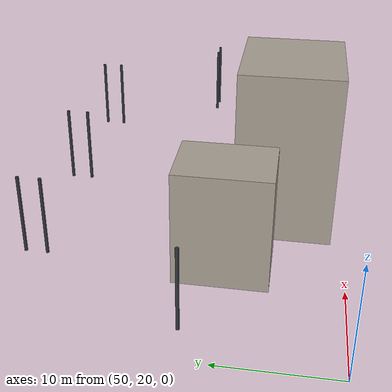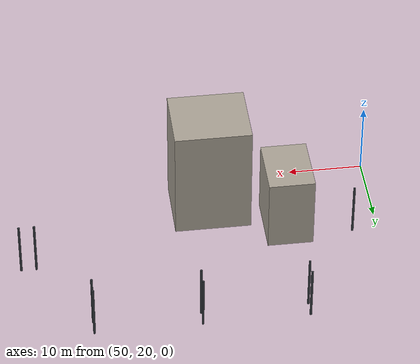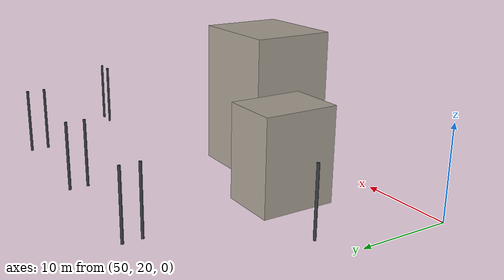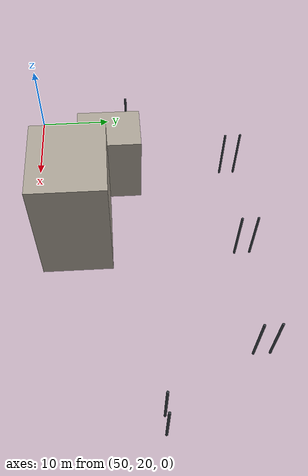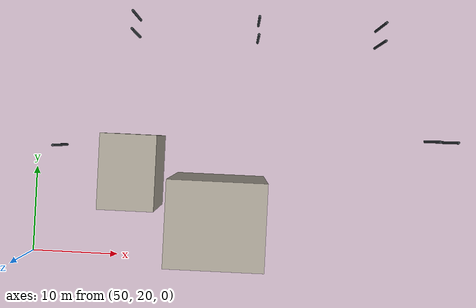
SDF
<sdf version="1.5">
 <world name="robocup_training_city_full_s7">
  <model name="building_2324">
   <static>true</static>
   <pose>71.866077 25.630236 0 0 0 0</pose>
   <link name="link">
    <pose>0 0 7.895653 0 0 0</pose>
    <collision name="collision">
     <geometry><box><size>10.213127 8.963937 15.791307</size></box></geometry>
     <surface><friction><ode><mu>1</mu><mu2>1</mu2></ode></friction></surface>
    </collision>
    <visual name="visual">
     <geometry><box><size>10.213127 8.963937 15.791307</size></box></geometry>
     <material>
      <ambient>0.297 0.2835 0.261 1</ambient>
      <diffuse>0.66 0.63 0.58 1</diffuse>
      <specular>0.04 0.04 0.04 1</specular>
      <emissive>0 0 0 1</emissive>
     </material>
    </visual>
    <inertial>
     <mass>1</mass>
     <inertia>
      <ixx>27.476462</ixx>
      <ixy>0</ixy>
      <ixz>0</ixz>
      <iyy>29.472778</iyy>
      <iyz>0</iyz>
      <izz>15.388344</izz>
     </inertia>
    </inertial>
   </link>
  </model>
  <model name="building_2450">
   <static>true</static>
   <pose>62.026288 30.303946 0 0 0 0</pose>
   <link name="link">
    <pose>0 0 5.142759 0 0 0</pose>
    <collision name="collision">
     <geometry><box><size>6.104244 8.189022 10.285517</size></box></geometry>
     <surface><friction><ode><mu>1</mu><mu2>1</mu2></ode></friction></surface>
    </collision>
    <visual name="visual">
     <geometry><box><size>6.104244 8.189022 10.285517</size></box></geometry>
     <material>
      <ambient>0.297 0.2835 0.261 1</ambient>
      <diffuse>0.66 0.63 0.58 1</diffuse>
      <specular>0.04 0.04 0.04 1</specular>
      <emissive>0 0 0 1</emissive>
     </material>
    </visual>
    <inertial>
     <mass>1</mass>
     <inertia>
      <ixx>14.404328</ixx>
      <ixy>0</ixy>
      <ixz>0</ixz>
      <iyy>11.921138</iyy>
      <iyz>0</iyz>
      <izz>8.69349</izz>
     </inertia>
    </inertial>
   </link>
  </model>
  <model name="lamp_post_2566">
   <static>true</static>
   <pose>53.4 32.777631 0 0 0 0</pose>
   <link name="link">
    <pose>0 0 3.75 0 0 0</pose>
    <collision name="collision">
     <geometry><cylinder><radius>0.15</radius><length>7.5</length></cylinder></geometry>
     <surface><friction><ode><mu>1</mu><mu2>1</mu2></ode></friction></surface>
    </collision>
    <visual name="visual">
     <geometry><cylinder><radius>0.15</radius><length>7.5</length></cylinder></geometry>
     <material>
      <ambient>0.09 0.099 0.108 1</ambient>
      <diffuse>0.2 0.22 0.24 1</diffuse>
      <specular>0.04 0.04 0.04 1</specular>
      <emissive>0 0 0 1</emissive>
     </material>
    </visual>
    <inertial>
     <mass>1</mass>
     <inertia>
      <ixx>4.693125</ixx>
      <ixy>0</ixy>
      <ixz>0</ixz>
      <iyy>4.693125</iyy>
      <iyz>0</iyz>
      <izz>0.01125</izz>
     </inertia>
    </inertial>
   </link>
  </model>
  <model name="lamp_post_2577">
   <static>true</static>
   <pose>96 35.161075 0 0 0 0</pose>
   <link name="link">
    <pose>0 0 3.75 0 0 0</pose>
    <collision name="collision">
     <geometry><cylinder><radius>0.15</radius><length>7.5</length></cylinder></geometry>
     <surface><friction><ode><mu>1</mu><mu2>1</mu2></ode></friction></surface>
    </collision>
    <visual name="visual">
     <geometry><cylinder><radius>0.15</radius><length>7.5</length></cylinder></geometry>
     <material>
      <ambient>0.09 0.099 0.108 1</ambient>
      <diffuse>0.2 0.22 0.24 1</diffuse>
      <specular>0.04 0.04 0.04 1</specular>
      <emissive>0 0 0 1</emissive>
     </material>
    </visual>
    <inertial>
     <mass>1</mass>
     <inertia>
      <ixx>4.693125</ixx>
      <ixy>0</ixy>
      <ixz>0</ixz>
      <iyy>4.693125</iyy>
      <iyz>0</iyz>
      <izz>0.01125</izz>
     </inertia>
    </inertial>
   </link>
  </model>
  <model name="lamp_post_2578">
   <static>true</static>
   <pose>98 35.161075 0 0 0 0</pose>
   <link name="link">
    <pose>0 0 3.75 0 0 0</pose>
    <collision name="collision">
     <geometry><cylinder><radius>0.15</radius><length>7.5</length></cylinder></geometry>
     <surface><friction><ode><mu>1</mu><mu2>1</mu2></ode></friction></surface>
    </collision>
    <visual name="visual">
     <geometry><cylinder><radius>0.15</radius><length>7.5</length></cylinder></geometry>
     <material>
      <ambient>0.09 0.099 0.108 1</ambient>
      <diffuse>0.2 0.22 0.24 1</diffuse>
      <specular>0.04 0.04 0.04 1</specular>
      <emissive>0 0 0 1</emissive>
     </material>
    </visual>
    <inertial>
     <mass>1</mass>
     <inertia>
      <ixx>4.693125</ixx>
      <ixy>0</ixy>
      <ixz>0</ixz>
      <iyy>4.693125</iyy>
      <iyz>0</iyz>
      <izz>0.01125</izz>
     </inertia>
    </inertial>
   </link>
  </model>
  <model name="lamp_post_2683">
   <static>true</static>
   <pose>61.488174 46 0 0 0 0</pose>
   <link name="link">
    <pose>0 0 3.75 0 0 0</pose>
    <collision name="collision">
     <geometry><cylinder><radius>0.15</radius><length>7.5</length></cylinder></geometry>
     <surface><friction><ode><mu>1</mu><mu2>1</mu2></ode></friction></surface>
    </collision>
    <visual name="visual">
     <geometry><cylinder><radius>0.15</radius><length>7.5</length></cylinder></geometry>
     <material>
      <ambient>0.09 0.099 0.108 1</ambient>
      <diffuse>0.2 0.22 0.24 1</diffuse>
      <specular>0.04 0.04 0.04 1</specular>
      <emissive>0 0 0 1</emissive>
     </material>
    </visual>
    <inertial>
     <mass>1</mass>
     <inertia>
      <ixx>4.693125</ixx>
      <ixy>0</ixy>
      <ixz>0</ixz>
      <iyy>4.693125</iyy>
      <iyz>0</iyz>
      <izz>0.01125</izz>
     </inertia>
    </inertial>
   </link>
  </model>
  <model name="lamp_post_2684">
   <static>true</static>
   <pose>61.488174 48 0 0 0 0</pose>
   <link name="link">
    <pose>0 0 3.75 0 0 0</pose>
    <collision name="collision">
     <geometry><cylinder><radius>0.15</radius><length>7.5</length></cylinder></geometry>
     <surface><friction><ode><mu>1</mu><mu2>1</mu2></ode></friction></surface>
    </collision>
    <visual name="visual">
     <geometry><cylinder><radius>0.15</radius><length>7.5</length></cylinder></geometry>
     <material>
      <ambient>0.09 0.099 0.108 1</ambient>
      <diffuse>0.2 0.22 0.24 1</diffuse>
      <specular>0.04 0.04 0.04 1</specular>
      <emissive>0 0 0 1</emissive>
     </material>
    </visual>
    <inertial>
     <mass>1</mass>
     <inertia>
      <ixx>4.693125</ixx>
      <ixy>0</ixy>
      <ixz>0</ixz>
      <iyy>4.693125</iyy>
      <iyz>0</iyz>
      <izz>0.01125</izz>
     </inertia>
    </inertial>
   </link>
  </model>
  <model name="lamp_post_2685">
   <static>true</static>
   <pose>75.488174 46 0 0 0 0</pose>
   <link name="link">
    <pose>0 0 3.75 0 0 0</pose>
    <collision name="collision">
     <geometry><cylinder><radius>0.15</radius><length>7.5</length></cylinder></geometry>
     <surface><friction><ode><mu>1</mu><mu2>1</mu2></ode></friction></surface>
    </collision>
    <visual name="visual">
     <geometry><cylinder><radius>0.15</radius><length>7.5</length></cylinder></geometry>
     <material>
      <ambient>0.09 0.099 0.108 1</ambient>
      <diffuse>0.2 0.22 0.24 1</diffuse>
      <specular>0.04 0.04 0.04 1</specular>
      <emissive>0 0 0 1</emissive>
     </material>
    </visual>
    <inertial>
     <mass>1</mass>
     <inertia>
      <ixx>4.693125</ixx>
      <ixy>0</ixy>
      <ixz>0</ixz>
      <iyy>4.693125</iyy>
      <iyz>0</iyz>
      <izz>0.01125</izz>
     </inertia>
    </inertial>
   </link>
  </model>
  <model name="lamp_post_2686">
   <static>true</static>
   <pose>75.488174 48 0 0 0 0</pose>
   <link name="link">
    <pose>0 0 3.75 0 0 0</pose>
    <collision name="collision">
     <geometry><cylinder><radius>0.15</radius><length>7.5</length></cylinder></geometry>
     <surface><friction><ode><mu>1</mu><mu2>1</mu2></ode></friction></surface>
    </collision>
    <visual name="visual">
     <geometry><cylinder><radius>0.15</radius><length>7.5</length></cylinder></geometry>
     <material>
      <ambient>0.09 0.099 0.108 1</ambient>
      <diffuse>0.2 0.22 0.24 1</diffuse>
      <specular>0.04 0.04 0.04 1</specular>
      <emissive>0 0 0 1</emissive>
     </material>
    </visual>
    <inertial>
     <mass>1</mass>
     <inertia>
      <ixx>4.693125</ixx>
      <ixy>0</ixy>
      <ixz>0</ixz>
      <iyy>4.693125</iyy>
      <iyz>0</iyz>
      <izz>0.01125</izz>
     </inertia>
    </inertial>
   </link>
  </model>
  <model name="lamp_post_2687">
   <static>true</static>
   <pose>89.488174 46 0 0 0 0</pose>
   <link name="link">
    <pose>0 0 3.75 0 0 0</pose>
    <collision name="collision">
     <geometry><cylinder><radius>0.15</radius><length>7.5</length></cylinder></geometry>
     <surface><friction><ode><mu>1</mu><mu2>1</mu2></ode></friction></surface>
    </collision>
    <visual name="visual">
     <geometry><cylinder><radius>0.15</radius><length>7.5</length></cylinder></geometry>
     <material>
      <ambient>0.09 0.099 0.108 1</ambient>
      <diffuse>0.2 0.22 0.24 1</diffuse>
      <specular>0.04 0.04 0.04 1</specular>
      <emissive>0 0 0 1</emissive>
     </material>
    </visual>
    <inertial>
     <mass>1</mass>
     <inertia>
      <ixx>4.693125</ixx>
      <ixy>0</ixy>
      <ixz>0</ixz>
      <iyy>4.693125</iyy>
      <iyz>0</iyz>
      <izz>0.01125</izz>
     </inertia>
    </inertial>
   </link>
  </model>
  <model name="lamp_post_2688">
   <static>true</static>
   <pose>89.488174 48 0 0 0 0</pose>
   <link name="link">
    <pose>0 0 3.75 0 0 0</pose>
    <collision name="collision">
     <geometry><cylinder><radius>0.15</radius><length>7.5</length></cylinder></geometry>
     <surface><friction><ode><mu>1</mu><mu2>1</mu2></ode></friction></surface>
    </collision>
    <visual name="visual">
     <geometry><cylinder><radius>0.15</radius><length>7.5</length></cylinder></geometry>
     <material>
      <ambient>0.09 0.099 0.108 1</ambient>
      <diffuse>0.2 0.22 0.24 1</diffuse>
      <specular>0.04 0.04 0.04 1</specular>
      <emissive>0 0 0 1</emissive>
     </material>
    </visual>
    <inertial>
     <mass>1</mass>
     <inertia>
      <ixx>4.693125</ixx>
      <ixy>0</ixy>
      <ixz>0</ixz>
      <iyy>4.693125</iyy>
      <iyz>0</iyz>
      <izz>0.01125</izz>
     </inertia>
    </inertial>
   </link>
  </model>
 </world>
</sdf>
